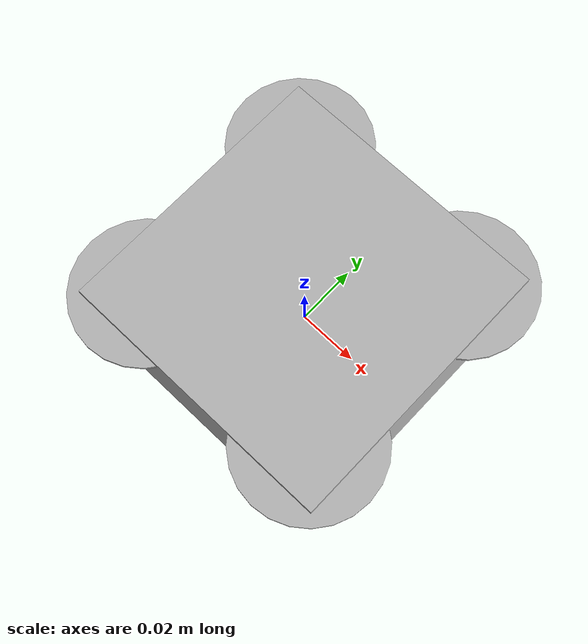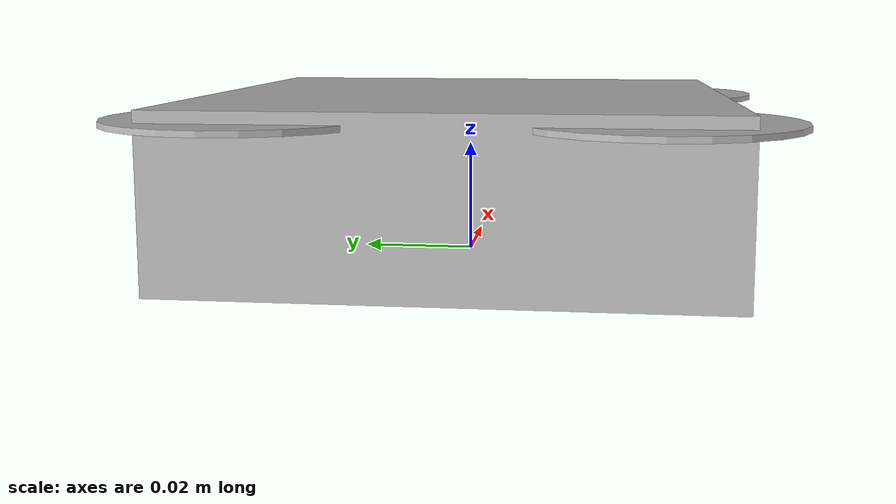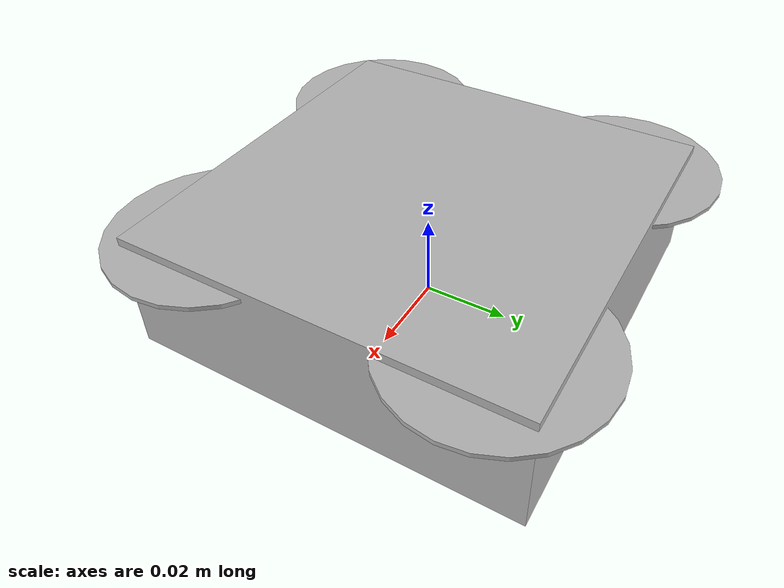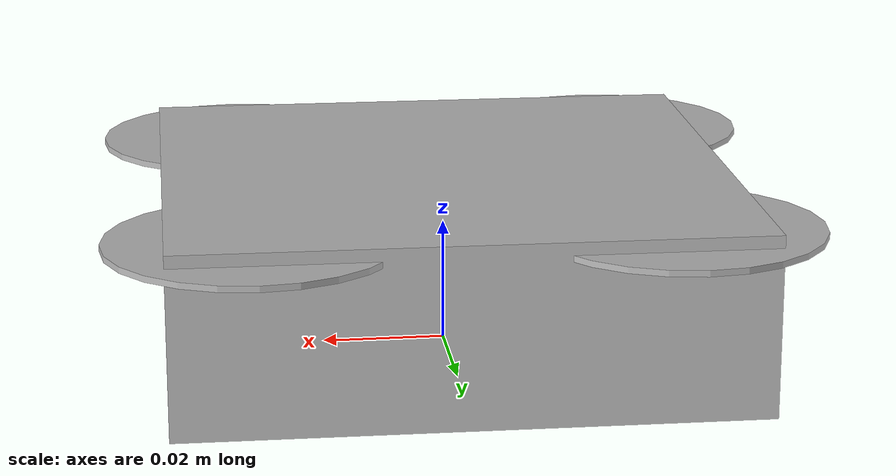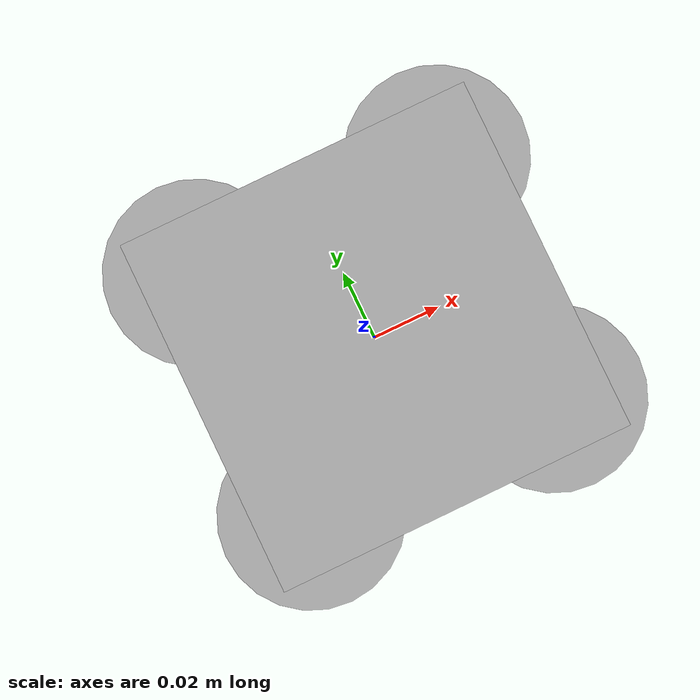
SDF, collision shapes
<?xml version="1.0"?>
<sdf version="1.6">
  <model name="crazyflie_2_1">

    <static>false</static>
    <pose>0 0 0.015 0 0 0</pose>

    <link name="cf_base_link">
      <pose>0 0 0 0 0 0</pose>

      <inertial>
        <mass>0.034</mass>
        <inertia>
          <ixx>16.571710e-6</ixx>
          <ixy>0.0</ixy>
          <ixz>0.0</ixz>
          <iyy>16.655602e-6</iyy>
          <iyz>0.0</iyz>
          <izz>29.261652e-6</izz>
        </inertia>
      </inertial>

      <visual name="cf_body_visual">
        <pose>0 0 0 0 0 0</pose>
        <geometry>
          <mesh>
            <uri>model://crazyflie_2_1/meshes/cf2_assembly_with_props.dae</uri>
            <scale>1 1 1</scale>
          </mesh>
        </geometry>
      </visual>

      <collision name="cf_body_collision">
        <pose>0 0 0 0 0 0</pose>
        <geometry>
          <box><size>0.092 0.092 0.029</size></box>
        </geometry>
      </collision>

      <sensor name="cf_imu_sensor" type="imu">
        <always_on>true</always_on>
        <update_rate>500</update_rate>
        <imu>
          <angular_velocity>
            <x><noise type="gaussian"><mean>0.0</mean><stddev>0.00018665</stddev></noise></x>
            <y><noise type="gaussian"><mean>0.0</mean><stddev>0.00018665</stddev></noise></y>
            <z><noise type="gaussian"><mean>0.0</mean><stddev>0.00018665</stddev></noise></z>
          </angular_velocity>
          <linear_acceleration>
            <x><noise type="gaussian"><mean>0.0</mean><stddev>0.00186</stddev></noise></x>
            <y><noise type="gaussian"><mean>0.0</mean><stddev>0.00186</stddev></noise></y>
            <z><noise type="gaussian"><mean>0.0</mean><stddev>0.00186</stddev></noise></z>
          </linear_acceleration>
        </imu>
        <plugin name="cf_imu_plugin" filename="libgazebo_ros_imu_sensor.so">
          <ros>
            <namespace>/cf1</namespace>
            <remapping>~/out:=imu</remapping>
          </ros>
          <initial_orientation_as_reference>false</initial_orientation_as_reference>
        </plugin>
      </sensor>

    </link>

    <!-- Motor 1: Front-Left (CCW) -->
    <link name="cf_rotor_m1">
      <pose>0.03254 0.03254 0.012 0 0 0</pose>
      <inertial>
        <mass>0.001</mass>
        <inertia>
          <ixx>9.75e-7</ixx><ixy>0</ixy><ixz>0</ixz>
          <iyy>9.75e-7</iyy><iyz>0</iyz>
          <izz>1.66704e-6</izz>
        </inertia>
      </inertial>
      <visual name="cf_rotor_m1_visual">
        <geometry><cylinder><radius>0.023</radius><length>0.001</length></cylinder></geometry>
      </visual>
      <collision name="cf_rotor_m1_collision">
        <geometry><cylinder><radius>0.023</radius><length>0.001</length></cylinder></geometry>
      </collision>
    </link>

    <!-- Motor 2: Front-Right (CW) -->
    <link name="cf_rotor_m2">
      <pose>0.03254 -0.03254 0.012 0 0 0</pose>
      <inertial>
        <mass>0.001</mass>
        <inertia>
          <ixx>9.75e-7</ixx><ixy>0</ixy><ixz>0</ixz>
          <iyy>9.75e-7</iyy><iyz>0</iyz>
          <izz>1.66704e-6</izz>
        </inertia>
      </inertial>
      <visual name="cf_rotor_m2_visual">
        <geometry><cylinder><radius>0.023</radius><length>0.001</length></cylinder></geometry>
      </visual>
      <collision name="cf_rotor_m2_collision">
        <geometry><cylinder><radius>0.023</radius><length>0.001</length></cylinder></geometry>
      </collision>
    </link>

    <!-- Motor 3: Rear-Right (CCW) -->
    <link name="cf_rotor_m3">
      <pose>-0.03254 -0.03254 0.012 0 0 0</pose>
      <inertial>
        <mass>0.001</mass>
        <inertia>
          <ixx>9.75e-7</ixx><ixy>0</ixy><ixz>0</ixz>
          <iyy>9.75e-7</iyy><iyz>0</iyz>
          <izz>1.66704e-6</izz>
        </inertia>
      </inertial>
      <visual name="cf_rotor_m3_visual">
        <geometry><cylinder><radius>0.023</radius><length>0.001</length></cylinder></geometry>
      </visual>
      <collision name="cf_rotor_m3_collision">
        <geometry><cylinder><radius>0.023</radius><length>0.001</length></cylinder></geometry>
      </collision>
    </link>

    <!-- Motor 4: Rear-Left (CW) -->
    <link name="cf_rotor_m4">
      <pose>-0.03254 0.03254 0.012 0 0 0</pose>
      <inertial>
        <mass>0.001</mass>
        <inertia>
          <ixx>9.75e-7</ixx><ixy>0</ixy><ixz>0</ixz>
          <iyy>9.75e-7</iyy><iyz>0</iyz>
          <izz>1.66704e-6</izz>
        </inertia>
      </inertial>
      <visual name="cf_rotor_m4_visual">
        <geometry><cylinder><radius>0.023</radius><length>0.001</length></cylinder></geometry>
      </visual>
      <collision name="cf_rotor_m4_collision">
        <geometry><cylinder><radius>0.023</radius><length>0.001</length></cylinder></geometry>
      </collision>
    </link>

    <joint name="cf_rotor_m1_joint" type="revolute">
      <parent>cf_base_link</parent>
      <child>cf_rotor_m1</child>
      <axis><xyz>0 0 1</xyz><limit><lower>-1e+16</lower><upper>1e+16</upper></limit></axis>
    </joint>

    <joint name="cf_rotor_m2_joint" type="revolute">
      <parent>cf_base_link</parent>
      <child>cf_rotor_m2</child>
      <axis><xyz>0 0 -1</xyz><limit><lower>-1e+16</lower><upper>1e+16</upper></limit></axis>
    </joint>

    <joint name="cf_rotor_m3_joint" type="revolute">
      <parent>cf_base_link</parent>
      <child>cf_rotor_m3</child>
      <axis><xyz>0 0 1</xyz><limit><lower>-1e+16</lower><upper>1e+16</upper></limit></axis>
    </joint>

    <joint name="cf_rotor_m4_joint" type="revolute">
      <parent>cf_base_link</parent>
      <child>cf_rotor_m4</child>
      <axis><xyz>0 0 -1</xyz><limit><lower>-1e+16</lower><upper>1e+16</upper></limit></axis>
    </joint>

    <!-- Ground truth odometry plugin -->
    <plugin name="cf_ground_truth_plugin" filename="libgazebo_ros_p3d.so">
      <ros>
        <namespace>/cf1</namespace>
        <remapping>odom:=ground_truth/odom</remapping>
      </ros>
      <body_name>cf_base_link</body_name>
      <frame_name>world</frame_name>
      <update_rate>100.0</update_rate>
      <xyz_offset>0 0 0</xyz_offset>
      <rpy_offset>0 0 0</rpy_offset>
      <gaussian_noise>0.0</gaussian_noise>
    </plugin>

    <!-- Motor force/torque plugin -->
    <plugin name="cf_motor_plugin" filename="libcf_motor_plugin.so">
    </plugin>

  </model>
</sdf>
